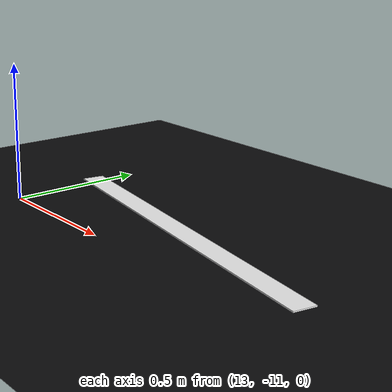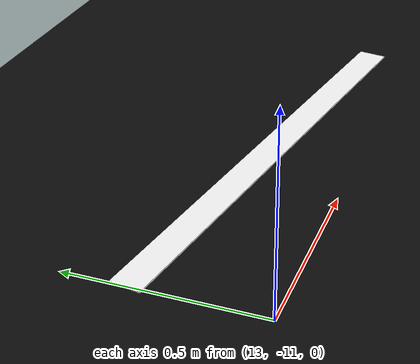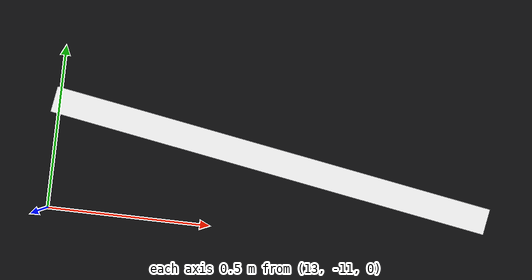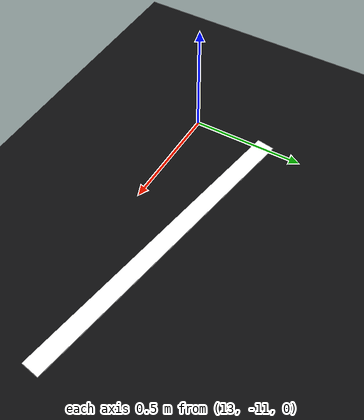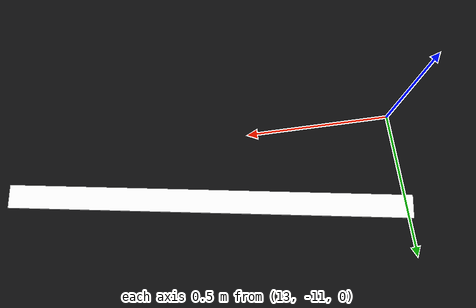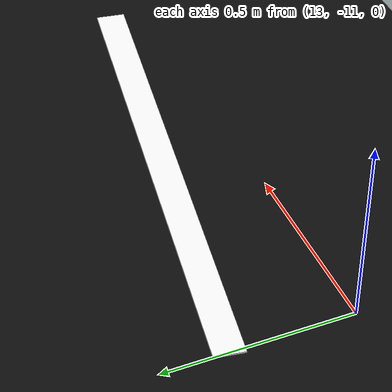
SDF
<sdf version="1.10">
 <world name="suzuka">
  <model name="ground">
   <static>true</static>
   <link name="ground_link">
    <collision name="ground_collision">
     <geometry><plane><normal>0 0 1</normal><size>160 160</size></plane></geometry>
    </collision>
    <visual name="ground_visual">
     <geometry><plane><normal>0 0 1</normal><size>160 160</size></plane></geometry>
     <material><ambient>0.045 0.045 0.050 1</ambient><diffuse>0.045 0.045 0.050 1</diffuse></material>
    </visual>
   </link>
  </model>
  <model name="start_line">
   <static>true</static>
   <link name="start_line_link">
    <visual name="start_bar">
     <pose>13.66322 -10.77802 0.01400 0 0 1.4089726</pose>
     <geometry><box><size>0.08 1.38000 0.004</size></box></geometry>
     <material><ambient>0.95 0.95 0.95 1</ambient><diffuse>0.95 0.95 0.95 1</diffuse></material>
    </visual>
   </link>
  </model>
 </world>
</sdf>
